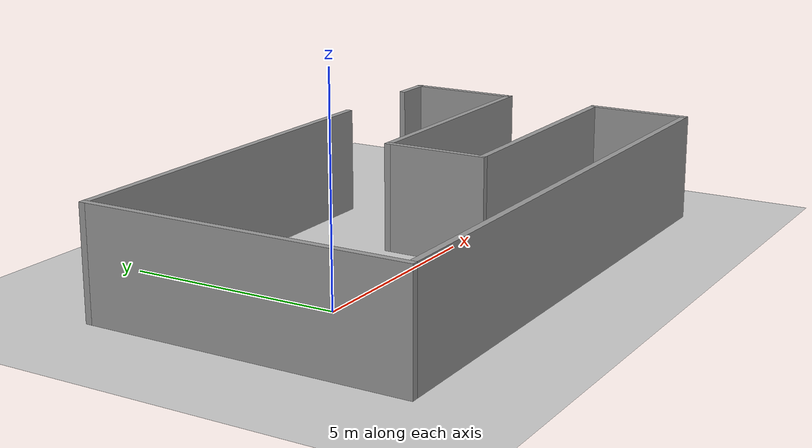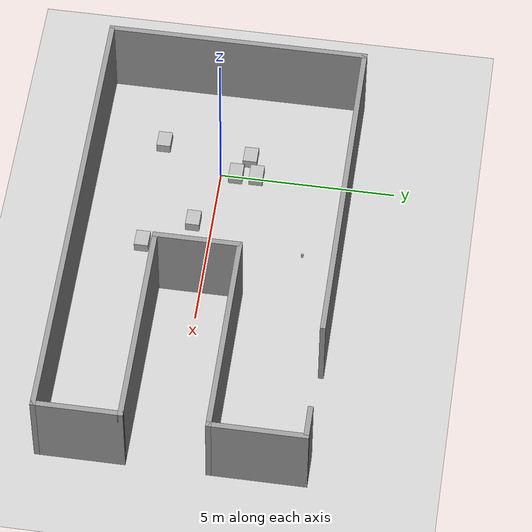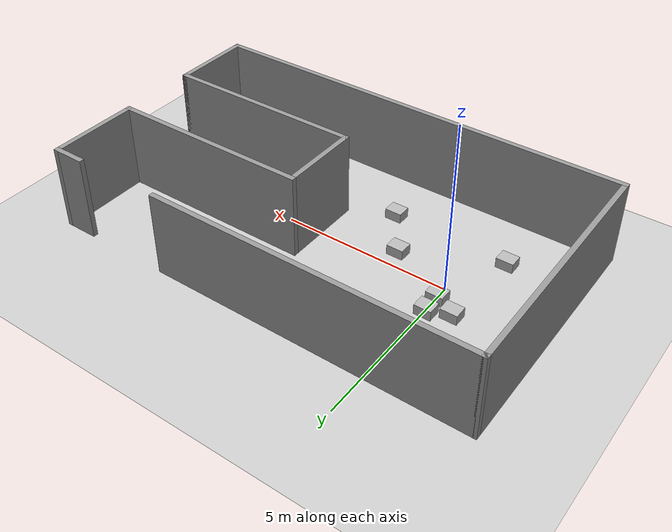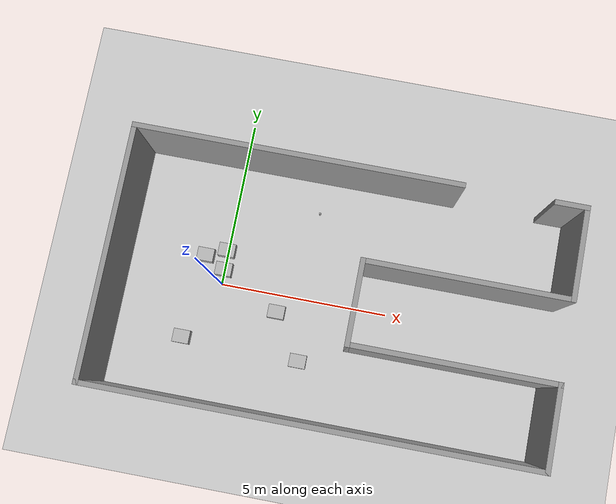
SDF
<sdf version="1.7">
 <world name="default">
  <light name="sun" type="directional">
   <pose>0 0 10 0 -0 0</pose>
   <diffuse>0.8 0.8 0.8 1</diffuse>
   <specular>0.2 0.2 0.2 1</specular>
   <attenuation>
    <range>1000</range>
    <constant>0.9</constant>
    <linear>0.01</linear>
    <quadratic>0.001</quadratic>
   </attenuation>
   <direction>-0.5 0.1 -0.9</direction>
   <spot><inner_angle>0</inner_angle><outer_angle>0</outer_angle><falloff>0</falloff></spot>
  </light>
  <model name="ground_plane">
   <static>1</static>
   <link name="link">
    <collision name="collision">
     <geometry><plane><normal>0 0 1</normal><size>100 100</size></plane></geometry>
     <surface><friction><ode><mu>100</mu><mu2>50</mu2></ode></friction></surface>
    </collision>
    <visual name="visual">
     <cast_shadows>0</cast_shadows>
     <geometry><plane><normal>0 0 1</normal><size>100 100</size></plane></geometry>
     <material>
      <script><uri>file://media/materials/scripts/gazebo.material</uri><name>Gazebo/Grey</name></script>
     </material>
    </visual>
   </link>
  </model>
  <gravity>0 0 -9.8</gravity>
  <magnetic_field>6e-06 2.3e-05 -4.2e-05</magnetic_field>
  <atmosphere type="adiabatic"/>
  <physics type="ode">
   <max_step_size>0.001</max_step_size>
   <real_time_factor>1</real_time_factor>
   <real_time_update_rate>1000</real_time_update_rate>
  </physics>
  <scene><ambient>0.4 0.4 0.4 1</ambient><background>0.7 0.7 0.7 1</background><shadows>1</shadows></scene>
  <audio><device>default</device></audio>
  <spherical_coordinates>
   <surface_model>EARTH_WGS84</surface_model>
   <latitude_deg>0</latitude_deg>
   <longitude_deg>0</longitude_deg>
   <elevation>0</elevation>
   <heading_deg>0</heading_deg>
  </spherical_coordinates>
  <model name="lab_world">
   <pose>3.46832 0.073021 0 0 -0 0</pose>
   <link name="Wall_21">
    <collision name="Wall_21_Collision">
     <geometry><box><size>2.5 0.15 2.5</size></box></geometry>
     <pose>0 0 1.25 0 -0 0</pose>
    </collision>
    <visual name="Wall_21_Visual">
     <pose>0 0 1.25 0 -0 0</pose>
     <geometry><box><size>2.5 0.15 2.5</size></box></geometry>
     <material>
      <script><uri>file://media/materials/scripts/gazebo.material</uri><name>Gazebo/Grey</name></script>
      <ambient>1 1 1 1</ambient>
     </material>
     <meta><layer>0</layer></meta>
    </visual>
    <pose>0.575 -0.125 0 0 -0 -1.5708</pose>
   </link>
   <link name="Wall_22">
    <collision name="Wall_22_Collision">
     <geometry><box><size>6 0.15 2.5</size></box></geometry>
     <pose>0 0 1.25 0 -0 0</pose>
    </collision>
    <visual name="Wall_22_Visual">
     <pose>0 0 1.25 0 -0 0</pose>
     <geometry><box><size>6 0.15 2.5</size></box></geometry>
     <material>
      <script><uri>file://media/materials/scripts/gazebo.material</uri><name>Gazebo/Grey</name></script>
      <ambient>1 1 1 1</ambient>
     </material>
     <meta><layer>0</layer></meta>
    </visual>
    <pose>3.5 -1.3 0 0 -0 0</pose>
   </link>
   <link name="Wall_23">
    <collision name="Wall_23_Collision">
     <geometry><box><size>2.5 0.15 2.5</size></box></geometry>
     <pose>0 0 1.25 0 -0 0</pose>
    </collision>
    <visual name="Wall_23_Visual">
     <pose>0 0 1.25 0 -0 0</pose>
     <geometry><box><size>2.5 0.15 2.5</size></box></geometry>
     <material>
      <script><uri>file://media/materials/scripts/gazebo.material</uri><name>Gazebo/Grey</name></script>
      <ambient>1 1 1 1</ambient>
     </material>
     <meta><layer>0</layer></meta>
    </visual>
    <pose>6.425 -2.475 0 0 -0 -1.5708</pose>
   </link>
   <link name="Wall_24">
    <collision name="Wall_24_Collision">
     <geometry><box><size>13 0.15 2.5</size></box></geometry>
     <pose>0 0 1.25 0 -0 0</pose>
    </collision>
    <visual name="Wall_24_Visual">
     <pose>0 0 1.25 0 -0 0</pose>
     <geometry><box><size>13 0.15 2.5</size></box></geometry>
     <material>
      <script><uri>file://media/materials/scripts/gazebo.material</uri><name>Gazebo/Grey</name></script>
      <ambient>1 1 1 1</ambient>
     </material>
     <meta><layer>0</layer></meta>
    </visual>
    <pose>0 -3.65 0 0 -0 3.14159</pose>
   </link>
   <link name="Wall_26">
    <collision name="Wall_26_Collision">
     <geometry><box><size>7.45 0.15 2.5</size></box></geometry>
     <pose>0 0 1.25 0 -0 0</pose>
    </collision>
    <visual name="Wall_26_Visual">
     <pose>0 0 1.25 0 -0 0</pose>
     <geometry><box><size>7.45 0.15 2.5</size></box></geometry>
     <material>
      <script><uri>file://media/materials/scripts/gazebo.material</uri><name>Gazebo/Grey</name></script>
      <ambient>1 1 1 1</ambient>
     </material>
     <meta><layer>0</layer></meta>
    </visual>
    <pose>-6.425 -0 0 0 -0 -1.5708</pose>
   </link>
   <link name="Wall_28">
    <collision name="Wall_28_Collision">
     <geometry><box><size>9.5 0.15 2.5</size></box></geometry>
     <pose>0 0 1.25 0 -0 0</pose>
    </collision>
    <visual name="Wall_28_Visual">
     <pose>0 0 1.25 0 -0 0</pose>
     <geometry><box><size>9.5 0.15 2.5</size></box></geometry>
     <material>
      <script><uri>file://media/materials/scripts/gazebo.material</uri><name>Gazebo/Grey</name></script>
      <ambient>1 1 1 1</ambient>
     </material>
     <meta><layer>0</layer></meta>
    </visual>
    <pose>-1.75 3.65 0 0 -0 0</pose>
   </link>
   <link name="Wall_30">
    <collision name="Wall_30_Collision">
     <geometry><box><size>1 0.15 2.5</size></box></geometry>
     <pose>0 0 1.25 0 -0 0</pose>
    </collision>
    <visual name="Wall_30_Visual">
     <pose>0 0 1.25 0 -0 0</pose>
     <geometry><box><size>1 0.15 2.5</size></box></geometry>
     <material>
      <script><uri>file://media/materials/scripts/gazebo.material</uri><name>Gazebo/Grey</name></script>
      <ambient>1 1 1 1</ambient>
     </material>
     <meta><layer>0</layer></meta>
    </visual>
    <pose>6 3.65 0 0 -0 3.14159</pose>
   </link>
   <link name="Wall_4">
    <collision name="Wall_4_Collision">
     <geometry><box><size>2.75 0.15 2.5</size></box></geometry>
     <pose>0 0 1.25 0 -0 0</pose>
    </collision>
    <visual name="Wall_4_Visual">
     <pose>0 0 1.25 0 -0 0</pose>
     <geometry><box><size>2.75 0.15 2.5</size></box></geometry>
     <material>
      <script><uri>file://media/materials/scripts/gazebo.material</uri><name>Gazebo/Grey</name></script>
      <ambient>1 1 1 1</ambient>
     </material>
     <meta><layer>0</layer></meta>
    </visual>
    <pose>6.425 2.35 0 0 -0 -1.5708</pose>
   </link>
   <link name="Wall_5">
    <collision name="Wall_5_Collision">
     <geometry><box><size>6 0.15 2.5</size></box></geometry>
     <pose>0 0 1.25 0 -0 0</pose>
    </collision>
    <visual name="Wall_5_Visual">
     <pose>0 0 1.25 0 -0 0</pose>
     <geometry><box><size>6 0.15 2.5</size></box></geometry>
     <material>
      <script><uri>file://media/materials/scripts/gazebo.material</uri><name>Gazebo/Grey</name></script>
      <ambient>1 1 1 1</ambient>
     </material>
     <meta><layer>0</layer></meta>
    </visual>
    <pose>3.5 1.05 0 0 -0 3.14159</pose>
   </link>
   <static>1</static>
  </model>
  <model name="coke_can">
   <link name="link">
    <inertial>
     <pose>0 0 0.06 0 -0 0</pose>
     <mass>0.39</mass>
     <inertia>
      <ixx>0.00055575</ixx>
      <ixy>0</ixy>
      <ixz>0</ixz>
      <iyy>0.00055575</iyy>
      <iyz>0</iyz>
      <izz>0.0001755</izz>
     </inertia>
    </inertial>
    <collision name="collision">
     <pose>0.003937 0.004724 -0.18 0 -0 0</pose>
     <geometry><mesh><uri>model://coke_can/meshes/coke_can.dae</uri></mesh></geometry>
     <surface>
      <friction><ode><mu>1</mu><mu2>1</mu2></ode></friction>
      <contact><ode><kp>1e+07</kp><kd>1</kd><min_depth>0.001</min_depth><max_vel>0.1</max_vel></ode></contact>
     </surface>
    </collision>
    <visual name="visual">
     <pose>0.003937 0.004724 -0.18 0 -0 0</pose>
     <geometry><mesh><uri>model://coke_can/meshes/coke_can.dae</uri></mesh></geometry>
    </visual>
   </link>
   <pose>2.49919 2.68397 -0.002689 -0.05683 0.006552 -0.000501</pose>
  </model>
  <model name="cardboard_box_3">
   <link name="link">
    <inertial>
     <mass>2</mass>
     <inertia>
      <ixx>0.0416667</ixx>
      <ixy>0</ixy>
      <ixz>0</ixz>
      <iyy>0.0566667</iyy>
      <iyz>0</iyz>
      <izz>0.0683333</izz>
     </inertia>
    </inertial>
    <visual name="visual">
     <pose>0 0 -0.15 0 -0 0</pose>
     <geometry>
      <mesh><uri>model://cardboard_box/meshes/cardboard_box.dae</uri><scale>1.25932 1.00745 0.755591</scale></mesh>
     </geometry>
     <material><shader type="pixel"/></material>
    </visual>
    <collision name="collision">
     <geometry><box><size>0.5 0.4 0.3</size></box></geometry>
     <surface>
      <friction>
       <ode><mu>1</mu><mu2>1</mu2><fdir1>0 0 0</fdir1><slip1>0</slip1><slip2>0</slip2></ode>
       <torsional>
        <coefficient>1</coefficient>
        <patch_radius>0</patch_radius>
        <surface_radius>0</surface_radius>
        <use_patch_radius>1</use_patch_radius>
        <ode><slip>0</slip></ode>
       </torsional>
      </friction>
      <bounce><restitution_coefficient>0</restitution_coefficient><threshold>1e+06</threshold></bounce>
      <contact>
       <collide_without_contact>0</collide_without_contact>
       <collide_without_contact_bitmask>1</collide_without_contact_bitmask>
       <collide_bitmask>1</collide_bitmask>
       <ode>
        <soft_cfm>0</soft_cfm>
        <soft_erp>0.2</soft_erp>
        <kp>1e+07</kp>
        <kd>1</kd>
        <max_vel>0.1</max_vel>
        <min_depth>0.001</min_depth>
       </ode>
       <bullet>
        <split_impulse>1</split_impulse>
        <split_impulse_penetration_threshold>-0.01</split_impulse_penetration_threshold>
        <soft_cfm>0</soft_cfm>
        <soft_erp>0.2</soft_erp>
        <kp>1e+07</kp>
        <kd>1</kd>
       </bullet>
      </contact>
     </surface>
    </collision>
   </link>
   <static>1</static>
   <pose>-0.851457 -1.76467 0.15 0 -0 0</pose>
  </model>
  <model name="cardboard_box_1">
   <link name="link">
    <inertial>
     <mass>2</mass>
     <inertia>
      <ixx>0.0416667</ixx>
      <ixy>0</ixy>
      <ixz>0</ixz>
      <iyy>0.0566667</iyy>
      <iyz>0</iyz>
      <izz>0.0683333</izz>
     </inertia>
    </inertial>
    <visual name="visual">
     <pose>0 0 -0.15 0 -0 0</pose>
     <geometry>
      <mesh><uri>model://cardboard_box/meshes/cardboard_box.dae</uri><scale>1.25932 1.00745 0.755591</scale></mesh>
     </geometry>
     <material><shader type="pixel"/></material>
    </visual>
    <collision name="collision">
     <geometry><box><size>0.5 0.4 0.3</size></box></geometry>
     <surface>
      <friction>
       <ode><mu>1</mu><mu2>1</mu2><fdir1>0 0 0</fdir1><slip1>0</slip1><slip2>0</slip2></ode>
       <torsional>
        <coefficient>1</coefficient>
        <patch_radius>0</patch_radius>
        <surface_radius>0</surface_radius>
        <use_patch_radius>1</use_patch_radius>
        <ode><slip>0</slip></ode>
       </torsional>
      </friction>
      <bounce><restitution_coefficient>0</restitution_coefficient><threshold>1e+06</threshold></bounce>
      <contact>
       <collide_without_contact>0</collide_without_contact>
       <collide_without_contact_bitmask>1</collide_without_contact_bitmask>
       <collide_bitmask>1</collide_bitmask>
       <ode>
        <soft_cfm>0</soft_cfm>
        <soft_erp>0.2</soft_erp>
        <kp>1e+07</kp>
        <kd>1</kd>
        <max_vel>0.1</max_vel>
        <min_depth>0.001</min_depth>
       </ode>
       <bullet>
        <split_impulse>1</split_impulse>
        <split_impulse_penetration_threshold>-0.01</split_impulse_penetration_threshold>
        <soft_cfm>0</soft_cfm>
        <soft_erp>0.2</soft_erp>
        <kp>1e+07</kp>
        <kd>1</kd>
       </bullet>
      </contact>
     </surface>
    </collision>
   </link>
   <static>1</static>
   <pose>-0.645902 0.781232 0.15 0 -0 0</pose>
  </model>
  <model name="cardboard_box_0">
   <link name="link">
    <inertial>
     <mass>2</mass>
     <inertia>
      <ixx>0.0416667</ixx>
      <ixy>0</ixy>
      <ixz>0</ixz>
      <iyy>0.0566667</iyy>
      <iyz>0</iyz>
      <izz>0.0683333</izz>
     </inertia>
    </inertial>
    <visual name="visual">
     <pose>0 0 -0.15 0 -0 0</pose>
     <geometry>
      <mesh><uri>model://cardboard_box/meshes/cardboard_box.dae</uri><scale>1.25932 1.00745 0.755591</scale></mesh>
     </geometry>
     <material><shader type="pixel"/></material>
    </visual>
    <collision name="collision">
     <geometry><box><size>0.5 0.4 0.3</size></box></geometry>
     <surface>
      <friction>
       <ode><mu>1</mu><mu2>1</mu2><fdir1>0 0 0</fdir1><slip1>0</slip1><slip2>0</slip2></ode>
       <torsional>
        <coefficient>1</coefficient>
        <patch_radius>0</patch_radius>
        <surface_radius>0</surface_radius>
        <use_patch_radius>1</use_patch_radius>
        <ode><slip>0</slip></ode>
       </torsional>
      </friction>
      <bounce><restitution_coefficient>0</restitution_coefficient><threshold>1e+06</threshold></bounce>
      <contact>
       <collide_without_contact>0</collide_without_contact>
       <collide_without_contact_bitmask>1</collide_without_contact_bitmask>
       <collide_bitmask>1</collide_bitmask>
       <ode>
        <soft_cfm>0</soft_cfm>
        <soft_erp>0.2</soft_erp>
        <kp>1e+07</kp>
        <kd>1</kd>
        <max_vel>0.1</max_vel>
        <min_depth>0.001</min_depth>
       </ode>
       <bullet>
        <split_impulse>1</split_impulse>
        <split_impulse_penetration_threshold>-0.01</split_impulse_penetration_threshold>
        <soft_cfm>0</soft_cfm>
        <soft_erp>0.2</soft_erp>
        <kp>1e+07</kp>
        <kd>1</kd>
       </bullet>
      </contact>
     </surface>
    </collision>
   </link>
   <static>1</static>
   <pose>-0.022764 0.444116 0.15 0 -0 0</pose>
  </model>
  <model name="cardboard_box">
   <link name="link">
    <inertial>
     <mass>2</mass>
     <inertia>
      <ixx>0.0416667</ixx>
      <ixy>0</ixy>
      <ixz>0</ixz>
      <iyy>0.0566667</iyy>
      <iyz>0</iyz>
      <izz>0.0683333</izz>
     </inertia>
    </inertial>
    <visual name="visual">
     <pose>0 0 -0.15 0 -0 0</pose>
     <geometry>
      <mesh><uri>model://cardboard_box/meshes/cardboard_box.dae</uri><scale>1.25932 1.00745 0.755591</scale></mesh>
     </geometry>
     <material><shader type="pixel"/></material>
    </visual>
    <collision name="collision">
     <geometry><box><size>0.5 0.4 0.3</size></box></geometry>
     <surface>
      <friction>
       <ode><mu>1</mu><mu2>1</mu2><fdir1>0 0 0</fdir1><slip1>0</slip1><slip2>0</slip2></ode>
       <torsional>
        <coefficient>1</coefficient>
        <patch_radius>0</patch_radius>
        <surface_radius>0</surface_radius>
        <use_patch_radius>1</use_patch_radius>
        <ode><slip>0</slip></ode>
       </torsional>
      </friction>
      <bounce><restitution_coefficient>0</restitution_coefficient><threshold>1e+06</threshold></bounce>
      <contact>
       <collide_without_contact>0</collide_without_contact>
       <collide_without_contact_bitmask>1</collide_without_contact_bitmask>
       <collide_bitmask>1</collide_bitmask>
       <ode>
        <soft_cfm>0</soft_cfm>
        <soft_erp>0.2</soft_erp>
        <kp>1e+07</kp>
        <kd>1</kd>
        <max_vel>0.1</max_vel>
        <min_depth>0.001</min_depth>
       </ode>
       <bullet>
        <split_impulse>1</split_impulse>
        <split_impulse_penetration_threshold>-0.01</split_impulse_penetration_threshold>
        <soft_cfm>0</soft_cfm>
        <soft_erp>0.2</soft_erp>
        <kp>1e+07</kp>
        <kd>1</kd>
       </bullet>
      </contact>
     </surface>
    </collision>
   </link>
   <static>1</static>
   <pose>-0.042766 1.03167 0.15 0 -0 0</pose>
  </model>
  <model name="cardboard_box_4">
   <link name="link">
    <inertial>
     <mass>2</mass>
     <inertia>
      <ixx>0.0416667</ixx>
      <ixy>0</ixy>
      <ixz>0</ixz>
      <iyy>0.0566667</iyy>
      <iyz>0</iyz>
      <izz>0.0683333</izz>
     </inertia>
    </inertial>
    <visual name="visual">
     <pose>0 0 -0.15 0 -0 0</pose>
     <geometry>
      <mesh><uri>model://cardboard_box/meshes/cardboard_box.dae</uri><scale>1.25932 1.00745 0.755591</scale></mesh>
     </geometry>
     <material><shader type="pixel"/></material>
    </visual>
    <collision name="collision">
     <geometry><box><size>0.5 0.4 0.3</size></box></geometry>
     <surface>
      <friction>
       <ode><mu>1</mu><mu2>1</mu2><fdir1>0 0 0</fdir1><slip1>0</slip1><slip2>0</slip2></ode>
       <torsional>
        <coefficient>1</coefficient>
        <patch_radius>0</patch_radius>
        <surface_radius>0</surface_radius>
        <use_patch_radius>1</use_patch_radius>
        <ode><slip>0</slip></ode>
       </torsional>
      </friction>
      <bounce><restitution_coefficient>0</restitution_coefficient><threshold>1e+06</threshold></bounce>
      <contact>
       <collide_without_contact>0</collide_without_contact>
       <collide_without_contact_bitmask>1</collide_without_contact_bitmask>
       <collide_bitmask>1</collide_bitmask>
       <ode>
        <soft_cfm>0</soft_cfm>
        <soft_erp>0.2</soft_erp>
        <kp>1e+07</kp>
        <kd>1</kd>
        <max_vel>0.1</max_vel>
        <min_depth>0.001</min_depth>
       </ode>
       <bullet>
        <split_impulse>1</split_impulse>
        <split_impulse_penetration_threshold>-0.01</split_impulse_penetration_threshold>
        <soft_cfm>0</soft_cfm>
        <soft_erp>0.2</soft_erp>
        <kp>1e+07</kp>
        <kd>1</kd>
       </bullet>
      </contact>
     </surface>
    </collision>
   </link>
   <static>1</static>
   <pose>2.69103 -1.85132 0.15 0 -0 0</pose>
  </model>
  <model name="cardboard_box_2">
   <link name="link">
    <inertial>
     <mass>2</mass>
     <inertia>
      <ixx>0.0416667</ixx>
      <ixy>0</ixy>
      <ixz>0</ixz>
      <iyy>0.0566667</iyy>
      <iyz>0</iyz>
      <izz>0.0683333</izz>
     </inertia>
    </inertial>
    <visual name="visual">
     <pose>0 0 -0.15 0 -0 0</pose>
     <geometry>
      <mesh><uri>model://cardboard_box/meshes/cardboard_box.dae</uri><scale>1.25932 1.00745 0.755591</scale></mesh>
     </geometry>
     <material><shader type="pixel"/></material>
    </visual>
    <collision name="collision">
     <geometry><box><size>0.5 0.4 0.3</size></box></geometry>
     <surface>
      <friction>
       <ode><mu>1</mu><mu2>1</mu2><fdir1>0 0 0</fdir1><slip1>0</slip1><slip2>0</slip2></ode>
       <torsional>
        <coefficient>1</coefficient>
        <patch_radius>0</patch_radius>
        <surface_radius>0</surface_radius>
        <use_patch_radius>1</use_patch_radius>
        <ode><slip>0</slip></ode>
       </torsional>
      </friction>
      <bounce><restitution_coefficient>0</restitution_coefficient><threshold>1e+06</threshold></bounce>
      <contact>
       <collide_without_contact>0</collide_without_contact>
       <collide_without_contact_bitmask>1</collide_without_contact_bitmask>
       <collide_bitmask>1</collide_bitmask>
       <ode>
        <soft_cfm>0</soft_cfm>
        <soft_erp>0.2</soft_erp>
        <kp>1e+07</kp>
        <kd>1</kd>
        <max_vel>0.1</max_vel>
        <min_depth>0.001</min_depth>
       </ode>
       <bullet>
        <split_impulse>1</split_impulse>
        <split_impulse_penetration_threshold>-0.01</split_impulse_penetration_threshold>
        <soft_cfm>0</soft_cfm>
        <soft_erp>0.2</soft_erp>
        <kp>1e+07</kp>
        <kd>1</kd>
       </bullet>
      </contact>
     </surface>
    </collision>
   </link>
   <static>1</static>
   <pose>1.78496 -0.528494 0.15 0 -0 0</pose>
  </model>
 </world>
</sdf>
